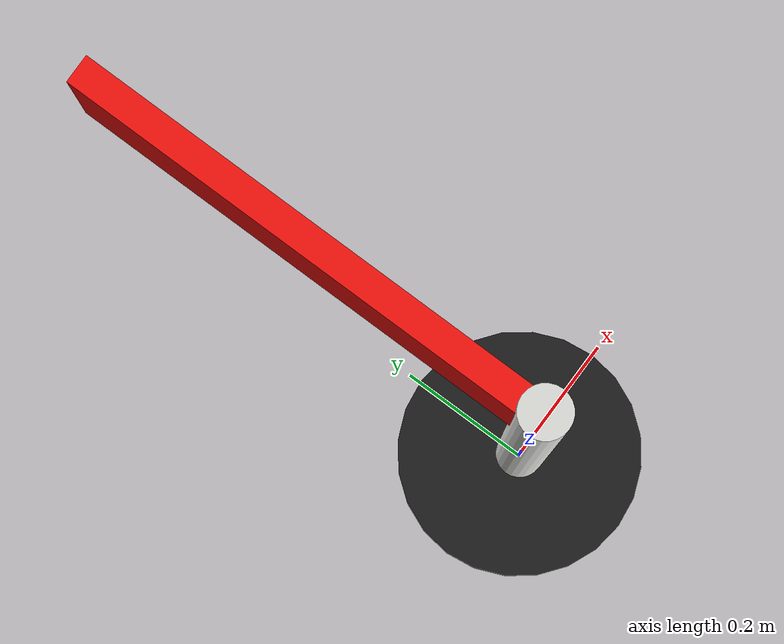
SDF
<?xml version="1.0" ?>
<sdf version="1.6">
  <model name="checkpoint_flag">
    <static>true</static>

    <link name="flag_link">
      <!-- 旗杆底座，提高视觉稳定感。 -->
      <collision name="base_collision">
        <pose>0 0 0.04 0 0 0</pose>
        <geometry>
          <cylinder>
            <radius>0.18</radius>
            <length>0.08</length>
          </cylinder>
        </geometry>
      </collision>
      <visual name="base_visual">
        <pose>0 0 0.04 0 0 0</pose>
        <geometry>
          <cylinder>
            <radius>0.18</radius>
            <length>0.08</length>
          </cylinder>
        </geometry>
        <material>
          <ambient>0.08 0.08 0.08 1</ambient>
          <diffuse>0.12 0.12 0.12 1</diffuse>
        </material>
      </visual>

      <collision name="pole_collision">
        <pose>0 0 0.72 0 0 0</pose>
        <geometry>
          <cylinder>
            <radius>0.035</radius>
            <length>1.36</length>
          </cylinder>
        </geometry>
      </collision>
      <visual name="pole_visual">
        <pose>0 0 0.72 0 0 0</pose>
        <geometry>
          <cylinder>
            <radius>0.035</radius>
            <length>1.36</length>
          </cylinder>
        </geometry>
        <material>
          <ambient>0.78 0.78 0.78 1</ambient>
          <diffuse>0.90 0.90 0.88 1</diffuse>
        </material>
      </visual>

      <!-- 红色旗面用于标识终点检查点。 -->
      <collision name="flag_collision">
        <pose>0 0.35 1.18 0 0 0</pose>
        <geometry>
          <box>
            <size>0.04 0.70 0.34</size>
          </box>
        </geometry>
      </collision>
      <visual name="flag_visual">
        <pose>0 0.35 1.18 0 0 0</pose>
        <geometry>
          <box>
            <size>0.04 0.70 0.34</size>
          </box>
        </geometry>
        <material>
          <ambient>0.85 0.06 0.05 1</ambient>
          <diffuse>1.00 0.08 0.06 1</diffuse>
        </material>
      </visual>
    </link>
  </model>
</sdf>
